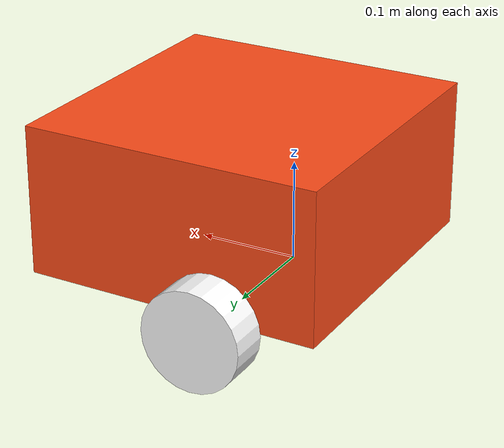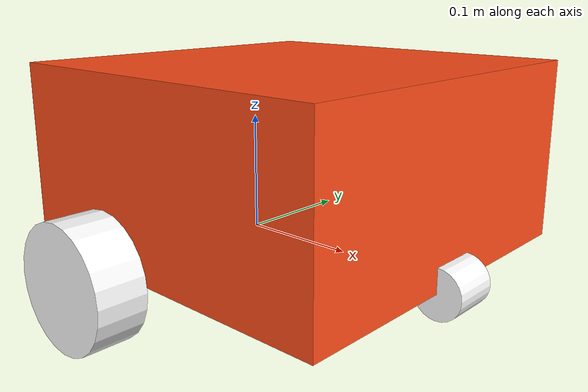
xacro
<?xml version="1.0"?>
<robot xmlns:xacro="http://www.ros.org/wiki/xacro">

    <xacro:include filename="inertial_macros.xacro" />

<material name="orange">
    <color rgba="1 0.3 0.1 1"/>
</material>

<material name="blue">
    <color rgba="1 1 1 1"/>
</material>

<link name= "base_link">

</link>
<joint name="chassis_joint" type="fixed">
    <parent link="base_link"/>
    <child link="chassis"/>
    <origin xyz="-0.1 0 0"/>
</joint>

<link name="chassis">
    <visual>
        <origin xyz="0.15 0 0.075"/>
        <geometry>
            <box size="0.3 0.3 0.15"/>
        </geometry>
        <material name="orange"/>
    </visual>
    <collision>
        <origin xyz="0.15 0 0.075"/>
        <geometry>
            <box size="0.3 0.3 0.15"/>
        </geometry>
    </collision>
    <xacro:inertial_box mass = "0.5" x="0.3" y="0.3" z="0.15">
        <origin xyz="0.15 0 0.075" rpy="0 0 0" />
    </xacro:inertial_box>
</link>

<joint name ="left_wheel_joint" type = "continuous">
    <parent link = "base_link"/>
    <child link = "left_wheel"/>
    <origin xyz = "0 0.175 0" rpy = "-${pi/2} 0 0"/>
    <axis xyz = "0 0 1"/>
</joint>

<link name = "left_wheel">
    <visual>
        <geometry>
            <cylinder radius = "0.05" length = "0.04"/>
        </geometry>
        <material name = "blue"/>
    </visual>
    <collision>
        <geometry>
            <cylinder radius = "0.05" length = "0.04"/>
        </geometry>
    </collision>
    <xacro:inertial_cylinder mass = "0.1" radius = "0.05" length = "0.04">
        <origin xyz="0 0 0" rpy="0 0 0" />
    </xacro:inertial_cylinder>
</link>

<link name = "right_wheel">
    <visual>
        <geometry>
            <cylinder radius = "0.05" length = "0.04"/>
        </geometry>
        <material name = "blue"/>
    </visual>
    <collision>
        <geometry>
            <cylinder radius = "0.05" length = "0.04"/>
        </geometry>
    </collision>
    <xacro:inertial_cylinder mass = "0.1" radius = "0.05" length = "0.04">
        <origin xyz="0 0 0" rpy="0 0 0" />
    </xacro:inertial_cylinder>
</link>

<joint name = "right_wheel_joint" type = "continuous">
    <parent link = "base_link"/>
    <child link = "right_wheel"/>
    <origin xyz = "0 -0.175 0" rpy = "-${pi/2} 0 0"/>
    <axis xyz = "0 0 1"/>
</joint>

<joint name="front_wheel" type = "fixed">
    <parent link ="base_link"/>
    <child link ="front_wheel_link"/>
    <origin xyz = "0.20 0 0" rpy = "-${pi/2} 0 0"/>
</joint>

<link name = "front_wheel_link">
    <visual>
        <geometry>
            <cylinder radius = "0.02" length = "0.04"/>
        </geometry>
        <material name = "blue"/>
    </visual>
    <collision>
        <geometry>
            <cylinder radius = "0.02" length = "0.04"/>
        </geometry>
    </collision>
    <xacro:inertial_cylinder mass = "0.1" radius = "0.05" length = "0.04">
        <origin xyz="0 0 0" rpy="0 0 0" />
    </xacro:inertial_cylinder>
</link>

</robot>
